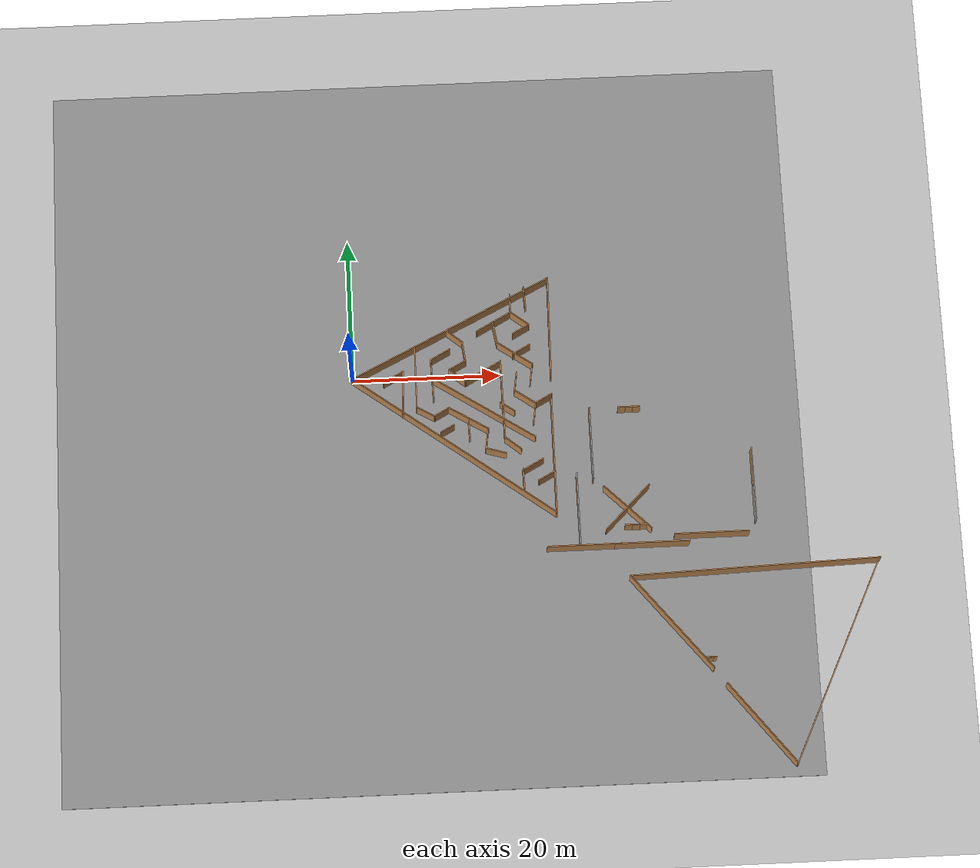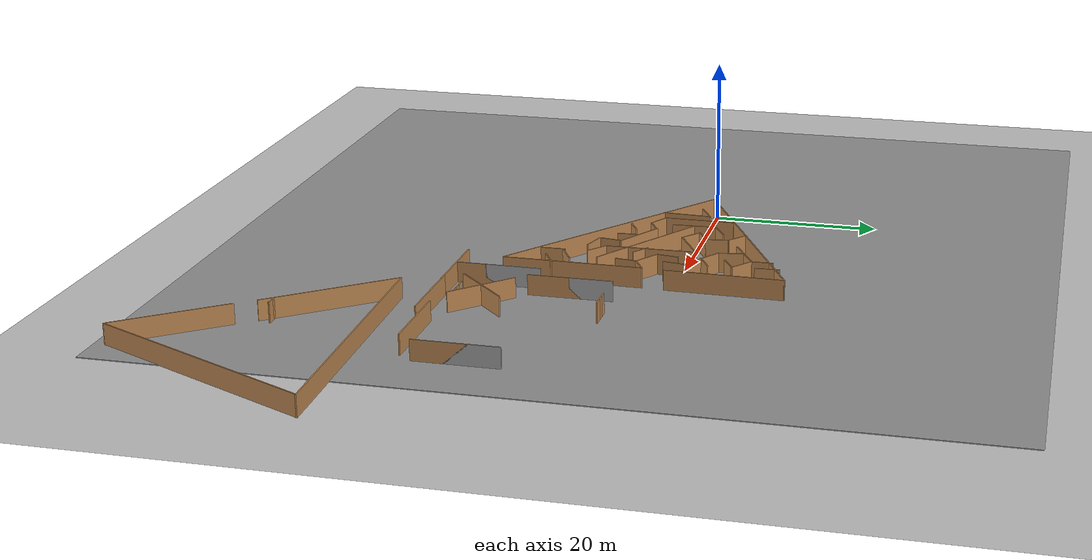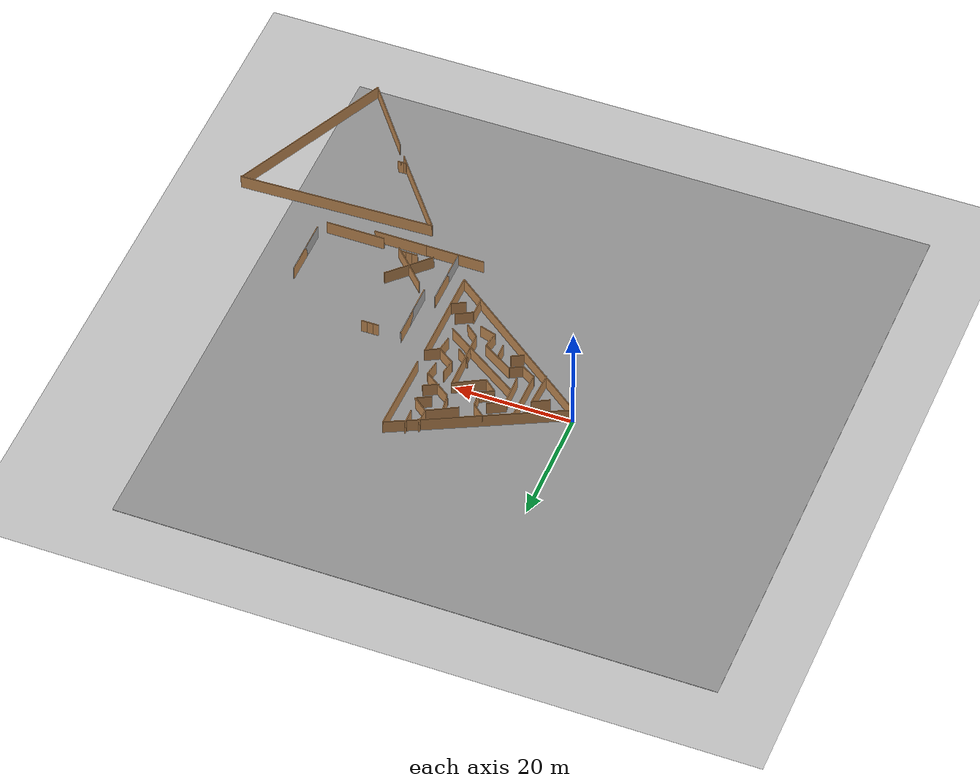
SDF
<sdf version="1.5">
 <world name="__default__">
  <model name="wall-10m-amodi_1">
   <pose>29.4591 -19.9386 0 0 -0 0</pose>
   <link name="Wall_24">
    <collision name="Wall_24_Collision">
     <geometry><box><size>10 0.15 2.5</size></box></geometry>
     <pose>0 0 1.25 0 -0 0</pose>
    </collision>
    <visual name="Wall_24_Visual">
     <pose>0 0 1.25 0 -0 0</pose>
     <geometry><box><size>10 0.15 2.5</size></box></geometry>
     <material>
      <script><uri>file://media/materials/scripts/gazebo.material</uri><name>Gazebo/Grey</name></script>
      <ambient>1 1 1 1</ambient>
     </material>
    </visual>
    <pose>0 -0 0 0 0 -1.5708</pose>
   </link>
   <link name="Wall_25">
    <collision name="Wall_25_Collision">
     <geometry><box><size>10 0.15 2.5</size></box></geometry>
     <pose>0 0 1.25 0 -0 0</pose>
    </collision>
    <visual name="Wall_25_Visual">
     <pose>0 0 1.25 0 -0 0</pose>
     <geometry><box><size>10 0.15 2.5</size></box></geometry>
     <material>
      <script><uri>file://media/materials/scripts/gazebo.material</uri><name>Gazebo/Wood</name></script>
      <ambient>1 1 1 1</ambient>
     </material>
    </visual>
    <pose>0 -0 0 0 -0 1.5708</pose>
   </link>
   <static>1</static>
  </model>
  <model name="wall-10m-amodi_2">
   <pose>31.6636 -10.8812 0 0 -0 0</pose>
   <link name="Wall_24">
    <collision name="Wall_24_Collision">
     <geometry><box><size>10 0.15 2.5</size></box></geometry>
     <pose>0 0 1.25 0 -0 0</pose>
    </collision>
    <visual name="Wall_24_Visual">
     <pose>0 0 1.25 0 -0 0</pose>
     <geometry><box><size>10 0.15 2.5</size></box></geometry>
     <material>
      <script><uri>file://media/materials/scripts/gazebo.material</uri><name>Gazebo/Grey</name></script>
      <ambient>1 1 1 1</ambient>
     </material>
    </visual>
    <pose>0 -0 0 0 0 -1.5708</pose>
   </link>
   <link name="Wall_25">
    <collision name="Wall_25_Collision">
     <geometry><box><size>10 0.15 2.5</size></box></geometry>
     <pose>0 0 1.25 0 -0 0</pose>
    </collision>
    <visual name="Wall_25_Visual">
     <pose>0 0 1.25 0 -0 0</pose>
     <geometry><box><size>10 0.15 2.5</size></box></geometry>
     <material>
      <script><uri>file://media/materials/scripts/gazebo.material</uri><name>Gazebo/Wood</name></script>
      <ambient>1 1 1 1</ambient>
     </material>
    </visual>
    <pose>0 -0 0 0 -0 1.5708</pose>
   </link>
   <static>1</static>
  </model>
  <model name="wall-10m-ofoghi_3_clone">
   <pose>30 -25 0 0 -0 0</pose>
   <link name="Wall_22">
    <collision name="Wall_22_Collision">
     <geometry><box><size>10 0.15 2.5</size></box></geometry>
     <pose>0 0 1.25 0 -0 0</pose>
    </collision>
    <visual name="Wall_22_Visual">
     <pose>0 0 1.25 0 -0 0</pose>
     <geometry><box><size>10 0.15 2.5</size></box></geometry>
     <material>
      <script><uri>file://media/materials/scripts/gazebo.material</uri><name>Gazebo/Wood</name></script>
      <ambient>1 1 1 1</ambient>
     </material>
    </visual>
   </link>
   <static>1</static>
  </model>
  <model name="wall-10m-ofoghi_3_clone_0">
   <pose>39 -25 0 0 -0 0</pose>
   <link name="Wall_22">
    <collision name="Wall_22_Collision">
     <geometry><box><size>10 0.15 2.5</size></box></geometry>
     <pose>0 0 1.25 0 -0 0</pose>
    </collision>
    <visual name="Wall_22_Visual">
     <pose>0 0 1.25 0 -0 0</pose>
     <geometry><box><size>10 0.15 2.5</size></box></geometry>
     <material>
      <script><uri>file://media/materials/scripts/gazebo.material</uri><name>Gazebo/Wood</name></script>
      <ambient>1 1 1 1</ambient>
     </material>
    </visual>
   </link>
   <static>1</static>
  </model>
  <model name="wall-10m-ofoghi_3_clone_4">
   <pose>47 -24 0 0 -0 0</pose>
   <link name="Wall_22">
    <collision name="Wall_22_Collision">
     <geometry><box><size>10 0.15 2.5</size></box></geometry>
     <pose>0 0 1.25 0 -0 0</pose>
    </collision>
    <visual name="Wall_22_Visual">
     <pose>0 0 1.25 0 -0 0</pose>
     <geometry><box><size>10 0.15 2.5</size></box></geometry>
     <material>
      <script><uri>file://media/materials/scripts/gazebo.material</uri><name>Gazebo/Wood</name></script>
      <ambient>1 1 1 1</ambient>
     </material>
    </visual>
   </link>
   <static>1</static>
  </model>
  <model name="tr_layout_1_clone">
   <pose>20 -7 0 0 0 -2.68444</pose>
   <link name="Wall_0">
    <collision name="Wall_0_Collision">
     <geometry><box><size>30.15 0.15 2.5</size></box></geometry>
     <pose>0 0 1.25 0 -0 0</pose>
    </collision>
    <visual name="Wall_0_Visual">
     <pose>0 0 1.25 0 -0 0</pose>
     <geometry><box><size>30.15 0.15 2.5</size></box></geometry>
     <material>
      <script><uri>file://media/materials/scripts/gazebo.material</uri><name>Gazebo/Wood</name></script>
      <ambient>1 1 1 1</ambient>
     </material>
    </visual>
    <pose>-0.040638 -14.7092 0 0 -0 0</pose>
   </link>
   <link name="Wall_2">
    <collision name="Wall_2_Collision">
     <geometry><box><size>14.059 0.15 2.5</size></box></geometry>
     <pose>0 0 1.25 0 -0 0</pose>
    </collision>
    <visual name="Wall_2_Visual">
     <pose>0 0 1.25 0 -0 0</pose>
     <geometry><box><size>14.059 0.15 2.5</size></box></geometry>
     <material>
      <script><uri>file://media/materials/scripts/gazebo.material</uri><name>Gazebo/Wood</name></script>
      <ambient>1 1 1 1</ambient>
     </material>
    </visual>
    <pose>-11.8706 -8.51916 0 0 -0 1.0975</pose>
   </link>
   <link name="Wall_4">
    <collision name="Wall_4_Collision">
     <geometry><box><size>33.2446 0.15 2.5</size></box></geometry>
     <pose>0 0 1.25 0 -0 0</pose>
    </collision>
    <visual name="Wall_4_Visual">
     <pose>0 0 1.25 0 -0 0</pose>
     <geometry><box><size>33.2446 0.15 2.5</size></box></geometry>
     <material>
      <script><uri>file://media/materials/scripts/gazebo.material</uri><name>Gazebo/Wood</name></script>
      <ambient>1 1 1 1</ambient>
     </material>
    </visual>
    <pose>7.54073 -0.040527 0 0 0 -1.10039</pose>
   </link>
   <link name="Wall_6">
    <collision name="Wall_6_Collision">
     <geometry><box><size>16.6075 0.15 2.5</size></box></geometry>
     <pose>0 0 1.25 0 -0 0</pose>
    </collision>
    <visual name="Wall_6_Visual">
     <pose>0 0 1.25 0 -0 0</pose>
     <geometry><box><size>16.6075 0.15 2.5</size></box></geometry>
     <material>
      <script><uri>file://media/materials/scripts/gazebo.material</uri><name>Gazebo/Wood</name></script>
      <ambient>1 1 1 1</ambient>
     </material>
    </visual>
    <pose>-3.70064 7.42084 0 0 -0 1.10987</pose>
   </link>
   <static>1</static>
  </model>
  <model name="tr_maze_4_clone_0">
   <pose>19.3157 -4.57073 0 0 0 -2.64571</pose>
   <link name="Wall_0">
    <collision name="Wall_0_Collision">
     <geometry><box><size>2.92308 0.15 2.5</size></box></geometry>
     <pose>0 0 1.25 0 -0 0</pose>
    </collision>
    <visual name="Wall_0_Visual">
     <pose>0 0 1.25 0 -0 0</pose>
     <geometry><box><size>2.92308 0.15 2.5</size></box></geometry>
     <material>
      <script><uri>file://media/materials/scripts/gazebo.material</uri><name>Gazebo/Wood</name></script>
      <ambient>1 1 1 1</ambient>
     </material>
    </visual>
    <pose>-11.0014 -10.9997 0 0 -0 1.12328</pose>
   </link>
   <link name="Wall_10">
    <collision name="Wall_10_Collision">
     <geometry><box><size>3.12321 0.15 2.5</size></box></geometry>
     <pose>0 0 1.25 0 -0 0</pose>
    </collision>
    <visual name="Wall_10_Visual">
     <pose>0 0 1.25 0 -0 0</pose>
     <geometry><box><size>3.12321 0.15 2.5</size></box></geometry>
     <material>
      <script><uri>file://media/materials/scripts/gazebo.material</uri><name>Gazebo/Wood</name></script>
      <ambient>1 1 1 1</ambient>
     </material>
    </visual>
    <pose>-4.90142 -8.64967 0 0 -0 1.22777</pose>
   </link>
   <link name="Wall_12">
    <collision name="Wall_12_Collision">
     <geometry><box><size>5.74017 0.15 2.5</size></box></geometry>
     <pose>0 0 1.25 0 -0 0</pose>
    </collision>
    <visual name="Wall_12_Visual">
     <pose>0 0 1.25 0 -0 0</pose>
     <geometry><box><size>5.74017 0.15 2.5</size></box></geometry>
     <material>
      <script><uri>file://media/materials/scripts/gazebo.material</uri><name>Gazebo/Wood</name></script>
      <ambient>0.996078 0.47451 0.0196078 1</ambient>
     </material>
    </visual>
    <pose>-5.65142 -4.74967 0 0 -0 2.03444</pose>
   </link>
   <link name="Wall_14">
    <collision name="Wall_14_Collision">
     <geometry><box><size>2.75 0.15 2.5</size></box></geometry>
     <pose>0 0 1.25 0 -0 0</pose>
    </collision>
    <visual name="Wall_14_Visual">
     <pose>0 0 1.25 0 -0 0</pose>
     <geometry><box><size>2.75 0.15 2.5</size></box></geometry>
     <material>
      <script><uri>file://media/materials/scripts/gazebo.material</uri><name>Gazebo/Wood</name></script>
      <ambient>0.996078 0.47451 0.0196078 1</ambient>
     </material>
    </visual>
    <pose>-6.70142 -4.74967 0 0 -0 3.14159</pose>
   </link>
   <link name="Wall_16">
    <collision name="Wall_16_Collision">
     <geometry><box><size>2.65 0.15 2.5</size></box></geometry>
     <pose>0 0 1.25 0 -0 0</pose>
    </collision>
    <visual name="Wall_16_Visual">
     <pose>0 0 1.25 0 -0 0</pose>
     <geometry><box><size>2.65 0.15 2.5</size></box></geometry>
     <material>
      <script><uri>file://media/materials/scripts/gazebo.material</uri><name>Gazebo/Wood</name></script>
      <ambient>0.996078 0.47451 0.0196078 1</ambient>
     </material>
    </visual>
    <pose>-6.15142 -1.24967 0 0 -0 0.927295</pose>
   </link>
   <link name="Wall_18">
    <collision name="Wall_18_Collision">
     <geometry><box><size>2.65 0.15 2.5</size></box></geometry>
     <pose>0 0 1.25 0 -0 0</pose>
    </collision>
    <visual name="Wall_18_Visual">
     <pose>0 0 1.25 0 -0 0</pose>
     <geometry><box><size>2.65 0.15 2.5</size></box></geometry>
     <material>
      <script><uri>file://media/materials/scripts/gazebo.material</uri><name>Gazebo/Wood</name></script>
      <ambient>0.996078 0.47451 0.0196078 1</ambient>
     </material>
    </visual>
    <pose>-3.65142 -1.24967 0 0 -0 0.927295</pose>
   </link>
   <link name="Wall_2">
    <collision name="Wall_2_Collision">
     <geometry><box><size>2.65599 0.15 2.5</size></box></geometry>
     <pose>0 0 1.25 0 -0 0</pose>
    </collision>
    <visual name="Wall_2_Visual">
     <pose>0 0 1.25 0 -0 0</pose>
     <geometry><box><size>2.65599 0.15 2.5</size></box></geometry>
     <material>
      <script><uri>file://media/materials/scripts/gazebo.material</uri><name>Gazebo/Wood</name></script>
      <ambient>1 1 1 1</ambient>
     </material>
    </visual>
    <pose>-8.80142 -11.1497 0 0 -0 1.07145</pose>
   </link>
   <link name="Wall_20">
    <collision name="Wall_20_Collision">
     <geometry><box><size>3.5041 0.15 2.5</size></box></geometry>
     <pose>0 0 1.25 0 -0 0</pose>
    </collision>
    <visual name="Wall_20_Visual">
     <pose>0 0 1.25 0 -0 0</pose>
     <geometry><box><size>3.5041 0.15 2.5</size></box></geometry>
     <material>
      <script><uri>file://media/materials/scripts/gazebo.material</uri><name>Gazebo/Wood</name></script>
      <ambient>0.996078 0.47451 0.0196078 1</ambient>
     </material>
    </visual>
    <pose>-3.65142 1.25033 0 0 -0 2.03444</pose>
   </link>
   <link name="Wall_22">
    <collision name="Wall_22_Collision">
     <geometry><box><size>2.65 0.15 2.5</size></box></geometry>
     <pose>0 0 1.25 0 -0 0</pose>
    </collision>
    <visual name="Wall_22_Visual">
     <pose>0 0 1.25 0 -0 0</pose>
     <geometry><box><size>2.65 0.15 2.5</size></box></geometry>
     <material>
      <script><uri>file://media/materials/scripts/gazebo.material</uri><name>Gazebo/Wood</name></script>
      <ambient>0.996078 0.47451 0.0196078 1</ambient>
     </material>
    </visual>
    <pose>-3.65142 3.75034 0 0 -0 0.927295</pose>
   </link>
   <link name="Wall_24">
    <collision name="Wall_24_Collision">
     <geometry><box><size>2.65 0.15 2.5</size></box></geometry>
     <pose>0 0 1.25 0 -0 0</pose>
    </collision>
    <visual name="Wall_24_Visual">
     <pose>0 0 1.25 0 -0 0</pose>
     <geometry><box><size>2.65 0.15 2.5</size></box></geometry>
     <material>
      <script><uri>file://media/materials/scripts/gazebo.material</uri><name>Gazebo/Wood</name></script>
      <ambient>0.996078 0.47451 0.0196078 1</ambient>
     </material>
    </visual>
    <pose>-5.65142 2.75034 0 0 -0 3.14159</pose>
   </link>
   <link name="Wall_26">
    <collision name="Wall_26_Collision">
     <geometry><box><size>2.84258 0.15 2.5</size></box></geometry>
     <pose>0 0 1.25 0 -0 0</pose>
    </collision>
    <visual name="Wall_26_Visual">
     <pose>0 0 1.25 0 -0 0</pose>
     <geometry><box><size>2.84258 0.15 2.5</size></box></geometry>
     <material>
      <script><uri>file://media/materials/scripts/gazebo.material</uri><name>Gazebo/Wood</name></script>
      <ambient>1 1 1 1</ambient>
     </material>
    </visual>
    <pose>0.098585 -10.9997 0 0 -0 1.9513</pose>
   </link>
   <link name="Wall_28">
    <collision name="Wall_28_Collision">
     <geometry><box><size>2.84258 0.15 2.5</size></box></geometry>
     <pose>0 0 1.25 0 -0 0</pose>
    </collision>
    <visual name="Wall_28_Visual">
     <pose>0 0 1.25 0 -0 0</pose>
     <geometry><box><size>2.84258 0.15 2.5</size></box></geometry>
     <material>
      <script><uri>file://media/materials/scripts/gazebo.material</uri><name>Gazebo/Wood</name></script>
      <ambient>1 1 1 1</ambient>
     </material>
    </visual>
    <pose>0.098585 -8.49967 0 0 -0 1.19029</pose>
   </link>
   <link name="Wall_30">
    <collision name="Wall_30_Collision">
     <geometry><box><size>2.65 0.15 2.5</size></box></geometry>
     <pose>0 0 1.25 0 -0 0</pose>
    </collision>
    <visual name="Wall_30_Visual">
     <pose>0 0 1.25 0 -0 0</pose>
     <geometry><box><size>2.65 0.15 2.5</size></box></geometry>
     <material>
      <script><uri>file://media/materials/scripts/gazebo.material</uri><name>Gazebo/Wood</name></script>
      <ambient>1 1 1 1</ambient>
     </material>
    </visual>
    <pose>1.84858 -7.24967 0 0 -0 0</pose>
   </link>
   <link name="Wall_32">
    <collision name="Wall_32_Collision">
     <geometry><box><size>2.84258 0.15 2.5</size></box></geometry>
     <pose>0 0 1.25 0 -0 0</pose>
    </collision>
    <visual name="Wall_32_Visual">
     <pose>0 0 1.25 0 -0 0</pose>
     <geometry><box><size>2.84258 0.15 2.5</size></box></geometry>
     <material>
      <script><uri>file://media/materials/scripts/gazebo.material</uri><name>Gazebo/Wood</name></script>
      <ambient>1 1 1 1</ambient>
     </material>
    </visual>
    <pose>2.59858 -5.99967 0 0 -0 1.9513</pose>
   </link>
   <link name="Wall_34">
    <collision name="Wall_34_Collision">
     <geometry><box><size>5.65 0.15 2.5</size></box></geometry>
     <pose>0 0 1.25 0 -0 0</pose>
    </collision>
    <visual name="Wall_34_Visual">
     <pose>0 0 1.25 0 -0 0</pose>
     <geometry><box><size>5.65 0.15 2.5</size></box></geometry>
     <material>
      <script><uri>file://media/materials/scripts/gazebo.material</uri><name>Gazebo/Wood</name></script>
      <ambient>1 1 1 1</ambient>
     </material>
    </visual>
    <pose>-0.651415 -4.74967 0 0 -0 3.14159</pose>
   </link>
   <link name="Wall_36">
    <collision name="Wall_36_Collision">
     <geometry><box><size>10.8855 0.15 2.5</size></box></geometry>
     <pose>0 0 1.25 0 -0 0</pose>
    </collision>
    <visual name="Wall_36_Visual">
     <pose>0 0 1.25 0 -0 0</pose>
     <geometry><box><size>10.8855 0.15 2.5</size></box></geometry>
     <material>
      <script><uri>file://media/materials/scripts/gazebo.material</uri><name>Gazebo/Wood</name></script>
      <ambient>0.996078 0.47451 0.0196078 1</ambient>
     </material>
    </visual>
    <pose>-0.901415 0.000335 0 0 -0 1.08632</pose>
   </link>
   <link name="Wall_38">
    <collision name="Wall_38_Collision">
     <geometry><box><size>2.38607 0.15 2.5</size></box></geometry>
     <pose>0 0 1.25 0 -0 0</pose>
    </collision>
    <visual name="Wall_38_Visual">
     <pose>0 0 1.25 0 -0 0</pose>
     <geometry><box><size>2.38607 0.15 2.5</size></box></geometry>
     <material>
      <script><uri>file://media/materials/scripts/gazebo.material</uri><name>Gazebo/Wood</name></script>
      <ambient>0.996078 0.47451 0.0196078 1</ambient>
     </material>
    </visual>
    <pose>-0.901415 1.25033 0 0 -0 2.03444</pose>
   </link>
   <link name="Wall_4">
    <collision name="Wall_4_Collision">
     <geometry><box><size>5.45 0.15 2.5</size></box></geometry>
     <pose>0 0 1.25 0 -0 0</pose>
    </collision>
    <visual name="Wall_4_Visual">
     <pose>0 0 1.25 0 -0 0</pose>
     <geometry><box><size>5.45 0.15 2.5</size></box></geometry>
     <material>
      <script><uri>file://media/materials/scripts/gazebo.material</uri><name>Gazebo/Wood</name></script>
      <ambient>1 1 1 1</ambient>
     </material>
    </visual>
    <pose>-5.55142 -10.0497 0 0 -0 0</pose>
   </link>
   <link name="Wall_40">
    <collision name="Wall_40_Collision">
     <geometry><box><size>2.84258 0.15 2.5</size></box></geometry>
     <pose>0 0 1.25 0 -0 0</pose>
    </collision>
    <visual name="Wall_40_Visual">
     <pose>0 0 1.25 0 -0 0</pose>
     <geometry><box><size>2.84258 0.15 2.5</size></box></geometry>
     <material>
      <script><uri>file://media/materials/scripts/gazebo.material</uri><name>Gazebo/Wood</name></script>
      <ambient>0.996078 0.47451 0.0196078 1</ambient>
     </material>
    </visual>
    <pose>1.09858 6.00033 0 0 -0 1.9513</pose>
   </link>
   <link name="Wall_42">
    <collision name="Wall_42_Collision">
     <geometry><box><size>16.0324 0.15 2.5</size></box></geometry>
     <pose>0 0 1.25 0 -0 0</pose>
    </collision>
    <visual name="Wall_42_Visual">
     <pose>0 0 1.25 0 -0 0</pose>
     <geometry><box><size>16.0324 0.15 2.5</size></box></geometry>
     <material>
      <script><uri>file://media/materials/scripts/gazebo.material</uri><name>Gazebo/Wood</name></script>
      <ambient>0.996078 0.47451 0.0196078 1</ambient>
     </material>
    </visual>
    <pose>1.84858 -0.249665 0 0 -0 2.06261</pose>
   </link>
   <link name="Wall_44">
    <collision name="Wall_44_Collision">
     <geometry><box><size>5.29296 0.15 2.5</size></box></geometry>
     <pose>0 0 1.25 0 -0 0</pose>
    </collision>
    <visual name="Wall_44_Visual">
     <pose>0 0 1.25 0 -0 0</pose>
     <geometry><box><size>5.29296 0.15 2.5</size></box></geometry>
     <material>
      <script><uri>file://media/materials/scripts/gazebo.material</uri><name>Gazebo/Wood</name></script>
      <ambient>1 1 1 1</ambient>
     </material>
    </visual>
    <pose>5.74858 -7.34966 0 0 -0 1.10715</pose>
   </link>
   <link name="Wall_46">
    <collision name="Wall_46_Collision">
     <geometry><box><size>3.15 0.15 2.5</size></box></geometry>
     <pose>0 0 1.25 0 -0 0</pose>
    </collision>
    <visual name="Wall_46_Visual">
     <pose>0 0 1.25 0 -0 0</pose>
     <geometry><box><size>3.15 0.15 2.5</size></box></geometry>
     <material>
      <script><uri>file://media/materials/scripts/gazebo.material</uri><name>Gazebo/Wood</name></script>
      <ambient>1 1 1 1</ambient>
     </material>
    </visual>
    <pose>3.09858 -9.74967 0 0 -0 3.14159</pose>
   </link>
   <link name="Wall_48">
    <collision name="Wall_48_Collision">
     <geometry><box><size>8.47406 0.15 2.5</size></box></geometry>
     <pose>0 0 1.25 0 -0 0</pose>
    </collision>
    <visual name="Wall_48_Visual">
     <pose>0 0 1.25 0 -0 0</pose>
     <geometry><box><size>8.47406 0.15 2.5</size></box></geometry>
     <material>
      <script><uri>file://media/materials/scripts/gazebo.material</uri><name>Gazebo/Wood</name></script>
      <ambient>1 1 1 1</ambient>
     </material>
    </visual>
    <pose>7.59858 -8.59966 0 0 -0 1.06953</pose>
   </link>
   <link name="Wall_50">
    <collision name="Wall_50_Collision">
     <geometry><box><size>2.84258 0.15 2.5</size></box></geometry>
     <pose>0 0 1.25 0 -0 0</pose>
    </collision>
    <visual name="Wall_50_Visual">
     <pose>0 0 1.25 0 -0 0</pose>
     <geometry><box><size>2.84258 0.15 2.5</size></box></geometry>
     <material>
      <script><uri>file://media/materials/scripts/gazebo.material</uri><name>Gazebo/Wood</name></script>
      <ambient>1 1 1 1</ambient>
     </material>
    </visual>
    <pose>8.89858 -3.79967 0 0 -0 2.11759</pose>
   </link>
   <link name="Wall_52">
    <collision name="Wall_52_Collision">
     <geometry><box><size>2.25 0.15 2.5</size></box></geometry>
     <pose>0 0 1.25 0 -0 0</pose>
    </collision>
    <visual name="Wall_52_Visual">
     <pose>0 0 1.25 0 -0 0</pose>
     <geometry><box><size>2.25 0.15 2.5</size></box></geometry>
     <material>
      <script><uri>file://media/materials/scripts/gazebo.material</uri><name>Gazebo/Wood</name></script>
      <ambient>1 1 1 1</ambient>
     </material>
    </visual>
    <pose>7.14858 -2.64966 0 0 -0 3.14159</pose>
   </link>
   <link name="Wall_54">
    <collision name="Wall_54_Collision">
     <geometry><box><size>6.25 0.15 2.5</size></box></geometry>
     <pose>0 0 1.25 0 -0 0</pose>
    </collision>
    <visual name="Wall_54_Visual">
     <pose>0 0 1.25 0 -0 0</pose>
     <geometry><box><size>6.25 0.15 2.5</size></box></geometry>
     <material>
      <script><uri>file://media/materials/scripts/gazebo.material</uri><name>Gazebo/Wood</name></script>
      <ambient>1 1 1 1</ambient>
     </material>
    </visual>
    <pose>4.42709 -0.065034 0 0 -0 2.0944</pose>
   </link>
   <link name="Wall_56">
    <collision name="Wall_56_Collision">
     <geometry><box><size>2.65 0.15 2.5</size></box></geometry>
     <pose>0 0 1.25 0 -0 0</pose>
    </collision>
    <visual name="Wall_56_Visual">
     <pose>0 0 1.25 0 -0 0</pose>
     <geometry><box><size>2.65 0.15 2.5</size></box></geometry>
     <material>
      <script><uri>file://media/materials/scripts/gazebo.material</uri><name>Gazebo/Wood</name></script>
      <ambient>1 1 1 1</ambient>
     </material>
    </visual>
    <pose>3.84858 3.75034 0 0 -0 0.927295</pose>
   </link>
   <link name="Wall_58">
    <collision name="Wall_58_Collision">
     <geometry><box><size>2.97843 0.15 2.5</size></box></geometry>
     <pose>0 0 1.25 0 -0 0</pose>
    </collision>
    <visual name="Wall_58_Visual">
     <pose>0 0 1.25 0 -0 0</pose>
     <geometry><box><size>2.97843 0.15 2.5</size></box></geometry>
     <material>
      <script><uri>file://media/materials/scripts/gazebo.material</uri><name>Gazebo/Wood</name></script>
      <ambient>1 1 1 1</ambient>
     </material>
    </visual>
    <pose>3.59858 5.75033 0 0 -0 2.35619</pose>
   </link>
   <link name="Wall_6">
    <collision name="Wall_6_Collision">
     <geometry><box><size>3.19631 0.15 2.5</size></box></geometry>
     <pose>0 0 1.25 0 -0 0</pose>
    </collision>
    <visual name="Wall_6_Visual">
     <pose>0 0 1.25 0 -0 0</pose>
     <geometry><box><size>3.19631 0.15 2.5</size></box></geometry>
     <material>
      <script><uri>file://media/materials/scripts/gazebo.material</uri><name>Gazebo/Wood</name></script>
      <ambient>1 1 1 1</ambient>
     </material>
    </visual>
    <pose>-8.80142 -8.64967 0 0 -0 1.97569</pose>
   </link>
   <link name="Wall_60">
    <collision name="Wall_60_Collision">
     <geometry><box><size>3.15 0.15 2.5</size></box></geometry>
     <pose>0 0 1.25 0 -0 0</pose>
    </collision>
    <visual name="Wall_60_Visual">
     <pose>0 0 1.25 0 -0 0</pose>
     <geometry><box><size>3.15 0.15 2.5</size></box></geometry>
     <material>
      <script><uri>file://media/materials/scripts/gazebo.material</uri><name>Gazebo/Wood</name></script>
      <ambient>1 1 1 1</ambient>
     </material>
    </visual>
    <pose>10.0986 -10.2497 0 0 -0 3.14159</pose>
   </link>
   <link name="Wall_62">
    <collision name="Wall_62_Collision">
     <geometry><box><size>5.98095 0.15 2.5</size></box></geometry>
     <pose>0 0 1.25 0 -0 0</pose>
    </collision>
    <visual name="Wall_62_Visual">
     <pose>0 0 1.25 0 -0 0</pose>
     <geometry><box><size>5.98095 0.15 2.5</size></box></geometry>
     <material>
      <script><uri>file://media/materials/scripts/gazebo.material</uri><name>Gazebo/Wood</name></script>
      <ambient>1 1 1 1</ambient>
     </material>
    </visual>
    <pose>10.0986 -7.74967 0 0 -0 1.03038</pose>
   </link>
   <link name="Wall_64">
    <collision name="Wall_64_Collision">
     <geometry><box><size>2.15 0.15 2.5</size></box></geometry>
     <pose>0 0 1.25 0 -0 0</pose>
    </collision>
    <visual name="Wall_64_Visual">
     <pose>0 0 1.25 0 -0 0</pose>
     <geometry><box><size>2.15 0.15 2.5</size></box></geometry>
     <material>
      <script><uri>file://media/materials/scripts/gazebo.material</uri><name>Gazebo/Wood</name></script>
      <ambient>1 1 1 1</ambient>
     </material>
    </visual>
    <pose>7.59858 -0.249665 0 0 -0 3.14159</pose>
   </link>
   <link name="Wall_66">
    <collision name="Wall_66_Collision">
     <geometry><box><size>2.9678 0.15 2.5</size></box></geometry>
     <pose>0 0 1.25 0 -0 0</pose>
    </collision>
    <visual name="Wall_66_Visual">
     <pose>0 0 1.25 0 -0 0</pose>
     <geometry><box><size>2.9678 0.15 2.5</size></box></geometry>
     <material>
      <script><uri>file://media/materials/scripts/gazebo.material</uri><name>Gazebo/Wood</name></script>
      <ambient>0.996078 0.47451 0.0196078 1</ambient>
     </material>
    </visual>
    <pose>2.44859 11.0003 0 0 0 -2.05032</pose>
   </link>
   <link name="Wall_68">
    <collision name="Wall_68_Collision">
     <geometry><box><size>3.15 0.15 2.5</size></box></geometry>
     <pose>0 0 1.25 0 -0 0</pose>
    </collision>
    <visual name="Wall_68_Visual">
     <pose>0 0 1.25 0 -0 0</pose>
     <geometry><box><size>3.15 0.15 2.5</size></box></geometry>
     <material>
      <script><uri>file://media/materials/scripts/gazebo.material</uri><name>Gazebo/Wood</name></script>
      <ambient>0.996078 0.47451 0.0196078 1</ambient>
     </material>
    </visual>
    <pose>0.298584 9.95034 0 0 -0 3.14159</pose>
   </link>
   <link name="Wall_70">
    <collision name="Wall_70_Collision">
     <geometry><box><size>2.65 0.15 2.5</size></box></geometry>
     <pose>0 0 1.25 0 -0 0</pose>
    </collision>
    <visual name="Wall_70_Visual">
     <pose>0 0 1.25 0 -0 0</pose>
     <geometry><box><size>2.65 0.15 2.5</size></box></geometry>
     <material>
      <script><uri>file://media/materials/scripts/gazebo.material</uri><name>Gazebo/Wood</name></script>
      <ambient>1 1 1 1</ambient>
     </material>
    </visual>
    <pose>-0.451416 12.2503 0 0 -0 3.14159</pose>
   </link>
   <link name="Wall_72">
    <collision name="Wall_72_Collision">
     <geometry><box><size>2.38607 0.15 2.5</size></box></geometry>
     <pose>0 0 1.25 0 -0 0</pose>
    </collision>
    <visual name="Wall_72_Visual">
     <pose>0 0 1.25 0 -0 0</pose>
     <geometry><box><size>2.38607 0.15 2.5</size></box></geometry>
     <material>
      <script><uri>file://media/materials/scripts/gazebo.material</uri><name>Gazebo/Wood</name></script>
      <ambient>1 1 1 1</ambient>
     </material>
    </visual>
    <pose>5.09858 1.25033 0 0 -0 1.10715</pose>
   </link>
   <link name="Wall_8">
    <collision name="Wall_8_Collision">
     <geometry><box><size>2.65 0.15 2.5</size></box></geometry>
     <pose>0 0 1.25 0 -0 0</pose>
    </collision>
    <visual name="Wall_8_Visual">
     <pose>0 0 1.25 0 -0 0</pose>
     <geometry><box><size>2.65 0.15 2.5</size></box></geometry>
     <material>
      <script><uri>file://media/materials/scripts/gazebo.material</uri><name>Gazebo/Wood</name></script>
      <ambient>1 1 1 1</ambient>
     </material>
    </visual>
    <pose>-8.15142 -7.24967 0 0 -0 0</pose>
   </link>
   <static>1</static>
  </model>
  <model name="ground_plane">
   <static>1</static>
   <link name="link">
    <collision name="collision">
     <geometry><plane><normal>0 0 1</normal><size>100 100</size></plane></geometry>
     <surface><friction><ode><mu>100</mu><mu2>50</mu2></ode></friction></surface>
    </collision>
    <visual name="visual">
     <cast_shadows>0</cast_shadows>
     <geometry><plane><normal>0 0 1</normal><size>100 100</size></plane></geometry>
     <material>
      <script><uri>file://media/materials/scripts/gazebo.material</uri><name>Gazebo/Grey</name></script>
     </material>
    </visual>
   </link>
   <pose>62 -10 0 0 -0 0</pose>
  </model>
  <model name="ground_plane_0">
   <static>1</static>
   <link name="link">
    <collision name="collision">
     <geometry><plane><normal>0 0 1</normal><size>100 100</size></plane></geometry>
     <surface><friction><ode><mu>100</mu><mu2>50</mu2></ode></friction></surface>
    </collision>
    <visual name="visual">
     <cast_shadows>0</cast_shadows>
     <geometry><plane><normal>0 0 1</normal><size>100 100</size></plane></geometry>
     <material>
      <script><uri>file://media/materials/scripts/gazebo.material</uri><name>Gazebo/Grey</name></script>
     </material>
    </visual>
   </link>
   <pose>10 -7 0 0 -0 0</pose>
  </model>
  <model name="tr_layout_1_clone_2">
   <pose>49.2375 -35.7781 0 0 -0 1.13077</pose>
   <link name="Wall_0">
    <collision name="Wall_0_Collision">
     <geometry><box><size>30.15 0.15 2.5</size></box></geometry>
     <pose>0 0 1.25 0 -0 0</pose>
    </collision>
    <visual name="Wall_0_Visual">
     <pose>0 0 1.25 0 -0 0</pose>
     <geometry><box><size>30.15 0.15 2.5</size></box></geometry>
     <material>
      <script><uri>file://media/materials/scripts/gazebo.material</uri><name>Gazebo/Wood</name></script>
      <ambient>1 1 1 1</ambient>
     </material>
    </visual>
    <pose>-0.040638 -14.7092 0 0 -0 0</pose>
   </link>
   <link name="Wall_2">
    <collision name="Wall_2_Collision">
     <geometry><box><size>14.059 0.15 2.5</size></box></geometry>
     <pose>0 0 1.25 0 -0 0</pose>
    </collision>
    <visual name="Wall_2_Visual">
     <pose>0 0 1.25 0 -0 0</pose>
     <geometry><box><size>14.059 0.15 2.5</size></box></geometry>
     <material>
      <script><uri>file://media/materials/scripts/gazebo.material</uri><name>Gazebo/Wood</name></script>
      <ambient>1 1 1 1</ambient>
     </material>
    </visual>
    <pose>-11.8706 -8.51916 0 0 -0 1.0975</pose>
   </link>
   <link name="Wall_4">
    <collision name="Wall_4_Collision">
     <geometry><box><size>33.2446 0.15 2.5</size></box></geometry>
     <pose>0 0 1.25 0 -0 0</pose>
    </collision>
    <visual name="Wall_4_Visual">
     <pose>0 0 1.25 0 -0 0</pose>
     <geometry><box><size>33.2446 0.15 2.5</size></box></geometry>
     <material>
      <script><uri>file://media/materials/scripts/gazebo.material</uri><name>Gazebo/Wood</name></script>
      <ambient>1 1 1 1</ambient>
     </material>
    </visual>
    <pose>7.54073 -0.040527 0 0 0 -1.10039</pose>
   </link>
   <link name="Wall_6">
    <collision name="Wall_6_Collision">
     <geometry><box><size>16.6075 0.15 2.5</size></box></geometry>
     <pose>0 0 1.25 0 -0 0</pose>
    </collision>
    <visual name="Wall_6_Visual">
     <pose>0 0 1.25 0 -0 0</pose>
     <geometry><box><size>16.6075 0.15 2.5</size></box></geometry>
     <material>
      <script><uri>file://media/materials/scripts/gazebo.material</uri><name>Gazebo/Wood</name></script>
      <ambient>1 1 1 1</ambient>
     </material>
    </visual>
    <pose>-3.70064 7.42084 0 0 -0 1.10987</pose>
   </link>
   <static>1</static>
  </model>
  <model name="oo">
   <pose>46 -41 0 0 -0 0</pose>
   <link name="Wall_35">
    <collision name="Wall_35_Collision">
     <geometry><box><size>1 0.15 2.5</size></box></geometry>
     <pose>0 0 1.25 0 -0 0</pose>
    </collision>
    <visual name="Wall_35_Visual">
     <pose>0 0 1.25 0 -0 0</pose>
     <geometry><box><size>1 0.15 2.5</size></box></geometry>
     <material>
      <script><uri>file://media/materials/scripts/gazebo.material</uri><name>Gazebo/Wood</name></script>
      <ambient>1 1 1 1</ambient>
     </material>
    </visual>
    <pose>0 0 0 0 -0 3.14159</pose>
   </link>
   <static>1</static>
  </model>
  <model name="oo_0">
   <pose>45.5806 -41 0 0 -0 0</pose>
   <link name="Wall_35">
    <collision name="Wall_35_Collision">
     <geometry><box><size>1 0.15 2.5</size></box></geometry>
     <pose>0 0 1.25 0 -0 0</pose>
    </collision>
    <visual name="Wall_35_Visual">
     <pose>0 0 1.25 0 -0 0</pose>
     <geometry><box><size>1 0.15 2.5</size></box></geometry>
     <material>
      <script><uri>file://media/materials/scripts/gazebo.material</uri><name>Gazebo/Wood</name></script>
      <ambient>1 1 1 1</ambient>
     </material>
    </visual>
    <pose>0 0 0 0 -0 3.14159</pose>
   </link>
   <static>1</static>
  </model>
  <model name="wall-10m-amodi_8">
   <pose>53 -17.4969 0 0 -0 0</pose>
   <link name="Wall_24">
    <collision name="Wall_24_Collision">
     <geometry><box><size>10 0.15 2.5</size></box></geometry>
     <pose>0 0 1.25 0 -0 0</pose>
    </collision>
    <visual name="Wall_24_Visual">
     <pose>0 0 1.25 0 -0 0</pose>
     <geometry><box><size>10 0.15 2.5</size></box></geometry>
     <material>
      <script><uri>file://media/materials/scripts/gazebo.material</uri><name>Gazebo/Grey</name></script>
      <ambient>1 1 1 1</ambient>
     </material>
    </visual>
    <pose>0 -0 0 0 0 -1.5708</pose>
   </link>
   <link name="Wall_25">
    <collision name="Wall_25_Collision">
     <geometry><box><size>10 0.15 2.5</size></box></geometry>
     <pose>0 0 1.25 0 -0 0</pose>
    </collision>
    <visual name="Wall_25_Visual">
     <pose>0 0 1.25 0 -0 0</pose>
     <geometry><box><size>10 0.15 2.5</size></box></geometry>
     <material>
      <script><uri>file://media/materials/scripts/gazebo.material</uri><name>Gazebo/Wood</name></script>
      <ambient>1 1 1 1</ambient>
     </material>
    </visual>
    <pose>0 -0 0 0 -0 1.5708</pose>
   </link>
   <static>1</static>
  </model>
  <model name="obs3">
   <pose>36 -20 0 0 -0 0</pose>
   <link name="Wall_0">
    <collision name="Wall_0_Collision">
     <geometry><box><size>8.63528 0.15 2.5</size></box></geometry>
     <pose>0 0 1.25 0 -0 0</pose>
    </collision>
    <visual name="Wall_0_Visual">
     <pose>0 0 1.25 0 -0 0</pose>
     <geometry><box><size>8.63528 0.15 2.5</size></box></geometry>
     <material>
      <script><uri>file://media/materials/scripts/gazebo.material</uri><name>Gazebo/Wood</name></script>
      <ambient>1 1 1 1</ambient>
     </material>
    </visual>
    <pose>0 0 0 0 0 -0.785398</pose>
   </link>
   <link name="Wall_2">
    <collision name="Wall_2_Collision">
     <geometry><box><size>8.63528 0.15 2.5</size></box></geometry>
     <pose>0 0 1.25 0 -0 0</pose>
    </collision>
    <visual name="Wall_2_Visual">
     <pose>0 0 1.25 0 -0 0</pose>
     <geometry><box><size>8.63528 0.15 2.5</size></box></geometry>
     <material>
      <script><uri>file://media/materials/scripts/gazebo.material</uri><name>Gazebo/Wood</name></script>
      <ambient>1 1 1 1</ambient>
     </material>
    </visual>
    <pose>0 0 0 0 0 -2.35619</pose>
   </link>
   <static>1</static>
  </model>
  <model name="oo_1">
   <pose>38 -22.4754 0 0 -0 0</pose>
   <link name="Wall_35">
    <collision name="Wall_35_Collision">
     <geometry><box><size>1 0.15 2.5</size></box></geometry>
     <pose>0 0 1.25 0 -0 0</pose>
    </collision>
    <visual name="Wall_35_Visual">
     <pose>0 0 1.25 0 -0 0</pose>
     <geometry><box><size>1 0.15 2.5</size></box></geometry>
     <material>
      <script><uri>file://media/materials/scripts/gazebo.material</uri><name>Gazebo/Wood</name></script>
      <ambient>1 1 1 1</ambient>
     </material>
    </visual>
    <pose>0 0 0 0 -0 3.14159</pose>
   </link>
   <static>1</static>
  </model>
  <model name="oo_2">
   <pose>37 -22.4738 0 0 -0 0</pose>
   <link name="Wall_35">
    <collision name="Wall_35_Collision">
     <geometry><box><size>1 0.15 2.5</size></box></geometry>
     <pose>0 0 1.25 0 -0 0</pose>
    </collision>
    <visual name="Wall_35_Visual">
     <pose>0 0 1.25 0 -0 0</pose>
     <geometry><box><size>1 0.15 2.5</size></box></geometry>
     <material>
      <script><uri>file://media/materials/scripts/gazebo.material</uri><name>Gazebo/Wood</name></script>
      <ambient>1 1 1 1</ambient>
     </material>
    </visual>
    <pose>0 0 0 0 -0 3.14159</pose>
   </link>
   <static>1</static>
  </model>
  <model name="oo_3">
   <pose>36 -22.4709 0 0 -0 0</pose>
   <link name="Wall_35">
    <collision name="Wall_35_Collision">
     <geometry><box><size>1 0.15 2.5</size></box></geometry>
     <pose>0 0 1.25 0 -0 0</pose>
    </collision>
    <visual name="Wall_35_Visual">
     <pose>0 0 1.25 0 -0 0</pose>
     <geometry><box><size>1 0.15 2.5</size></box></geometry>
     <material>
      <script><uri>file://media/materials/scripts/gazebo.material</uri><name>Gazebo/Wood</name></script>
      <ambient>1 1 1 1</ambient>
     </material>
    </visual>
    <pose>0 0 0 0 -0 3.14159</pose>
   </link>
   <static>1</static>
  </model>
  <model name="oo_4">
   <pose>38 -6 0 0 -0 0</pose>
   <link name="Wall_35">
    <collision name="Wall_35_Collision">
     <geometry><box><size>1 0.15 2.5</size></box></geometry>
     <pose>0 0 1.25 0 -0 0</pose>
    </collision>
    <visual name="Wall_35_Visual">
     <pose>0 0 1.25 0 -0 0</pose>
     <geometry><box><size>1 0.15 2.5</size></box></geometry>
     <material>
      <script><uri>file://media/materials/scripts/gazebo.material</uri><name>Gazebo/Wood</name></script>
      <ambient>1 1 1 1</ambient>
     </material>
    </visual>
    <pose>0 0 0 0 -0 3.14159</pose>
   </link>
   <static>1</static>
  </model>
  <model name="oo_5">
   <pose>37 -6 0 0 -0 0</pose>
   <link name="Wall_35">
    <collision name="Wall_35_Collision">
     <geometry><box><size>1 0.15 2.5</size></box></geometry>
     <pose>0 0 1.25 0 -0 0</pose>
    </collision>
    <visual name="Wall_35_Visual">
     <pose>0 0 1.25 0 -0 0</pose>
     <geometry><box><size>1 0.15 2.5</size></box></geometry>
     <material>
      <script><uri>file://media/materials/scripts/gazebo.material</uri><name>Gazebo/Wood</name></script>
      <ambient>1 1 1 1</ambient>
     </material>
    </visual>
    <pose>0 0 0 0 -0 3.14159</pose>
   </link>
   <static>1</static>
  </model>
  <model name="oo_6">
   <pose>36 -6 0 0 -0 0</pose>
   <link name="Wall_35">
    <collision name="Wall_35_Collision">
     <geometry><box><size>1 0.15 2.5</size></box></geometry>
     <pose>0 0 1.25 0 -0 0</pose>
    </collision>
    <visual name="Wall_35_Visual">
     <pose>0 0 1.25 0 -0 0</pose>
     <geometry><box><size>1 0.15 2.5</size></box></geometry>
     <material>
      <script><uri>file://media/materials/scripts/gazebo.material</uri><name>Gazebo/Wood</name></script>
      <ambient>1 1 1 1</ambient>
     </material>
    </visual>
    <pose>0 0 0 0 -0 3.14159</pose>
   </link>
   <static>1</static>
  </model>
 </world>
</sdf>
